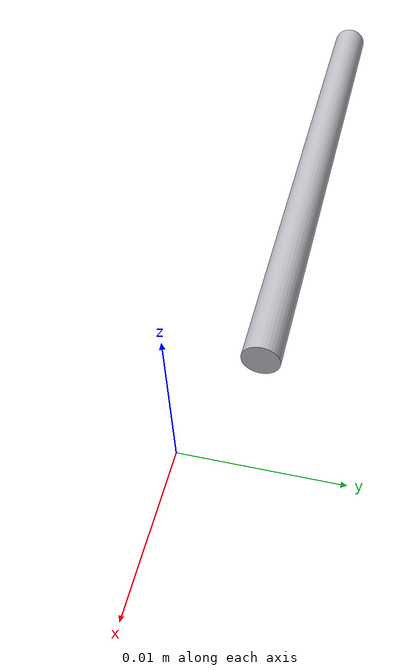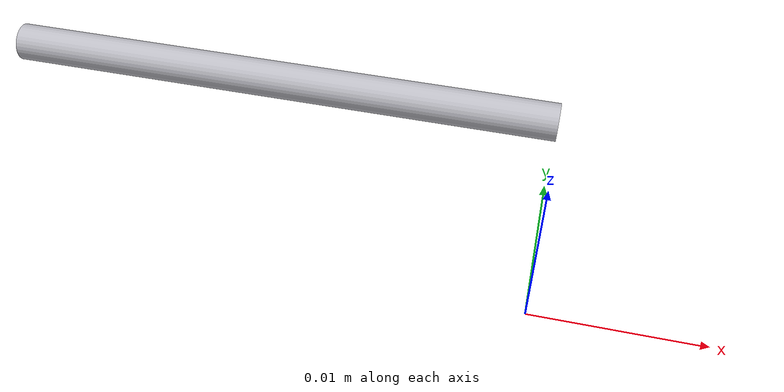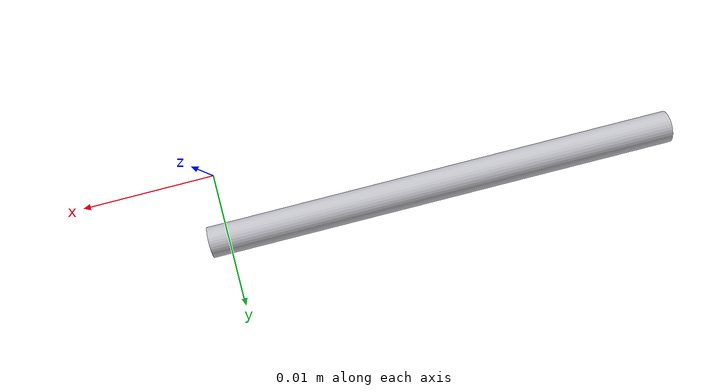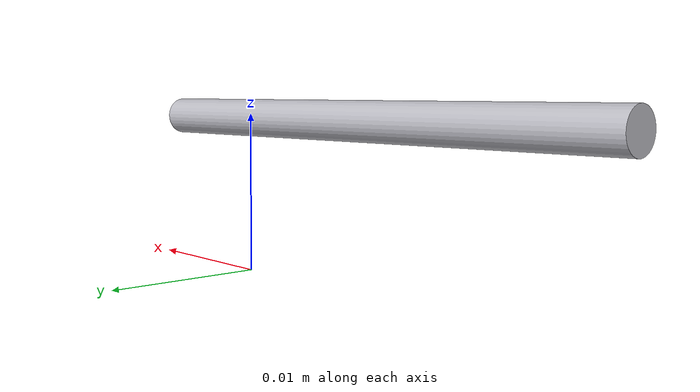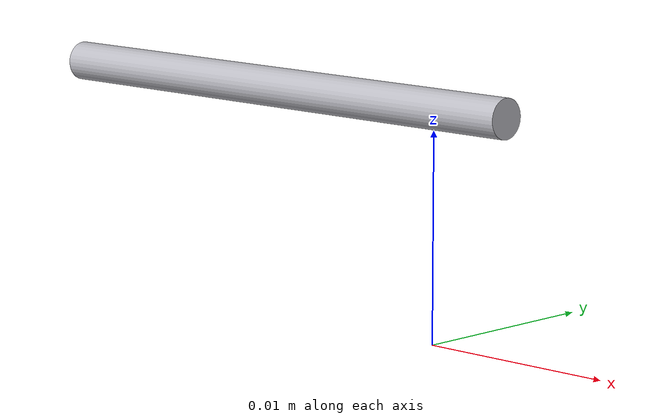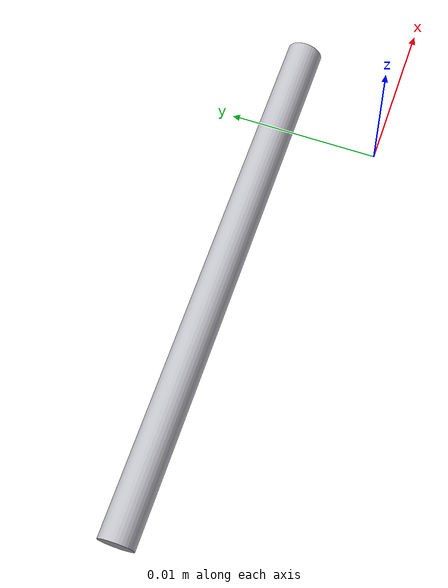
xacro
<?xml version="1.0" ?>
<robot name="TEST_rigidbody" xmlns:xacro="http://www.ros.org/wiki/xacro">

<xacro:include filename="../urdf/materials.xacro" />
<xacro:include filename="../urdf/TEST_rigidbody.trans" />
<xacro:include filename="../urdf/TEST_rigidbody.gazebo" />
<link name="base_link">
  <inertial>
    <origin xyz="-0.005 0.05000000000000001 -0.0050000000000450864" rpy="0 0 0"/>
    <mass value="0.14298462441732945"/>
    <inertia ixx="0.000112" iyy="6e-06" izz="0.000108" ixy="0.0" iyz="0.0" ixz="0.0"/>
  </inertial>
  <visual>
    <origin xyz="0 0 0" rpy="0 0 0"/>
    <geometry>
      <mesh filename="../meshes/base_link.stl" scale="0.001 0.001 0.001"/>
    </geometry>
    <material name="silver"/>
  </visual>
  <collision>
    <origin xyz="0 0 0" rpy="0 0 0"/>
    <geometry>
      <mesh filename="../meshes/base_link.stl" scale="0.001 0.001 0.001"/>
    </geometry>
  </collision>
</link>

</robot>

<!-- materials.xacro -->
<robot name="TEST_rigidbody" xmlns:xacro="http://www.ros.org/wiki/xacro" >

<material name="TEST_rigidbody_silver">
  <color rgba="0.700 0.700 0.700 1.000"/>
</material>

</robot>

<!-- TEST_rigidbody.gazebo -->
<robot name="TEST_rigidbody" xmlns:xacro="http://www.ros.org/wiki/xacro" >

<xacro:property name="body_color" value="Gazebo/Silver" />

<gazebo>
  <plugin name="control" filename="libgazebo_ros_control.so"/>
</gazebo>
<gazebo reference="base_link">
  <material>${body_color}</material>
  <mu1>0.2</mu1>
  <mu2>0.2</mu2>
  <self_collide>true</self_collide>
  <gravity>true</gravity>
</gazebo>

</robot>
